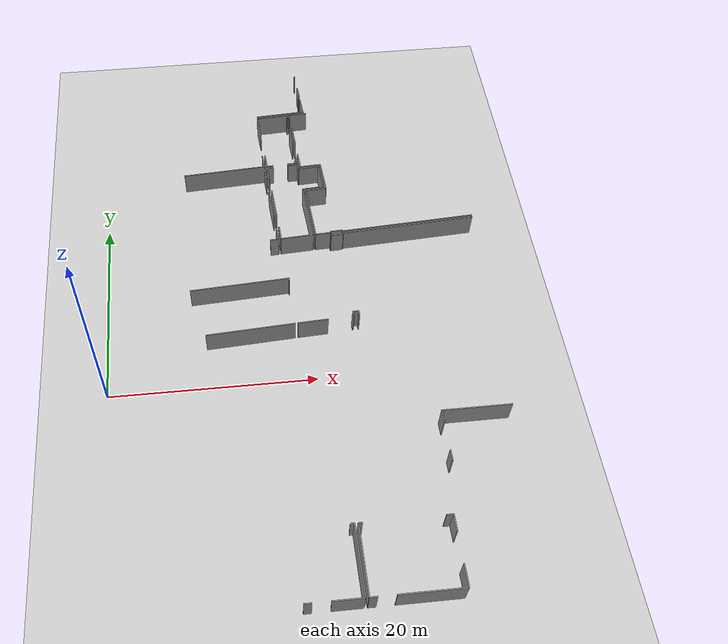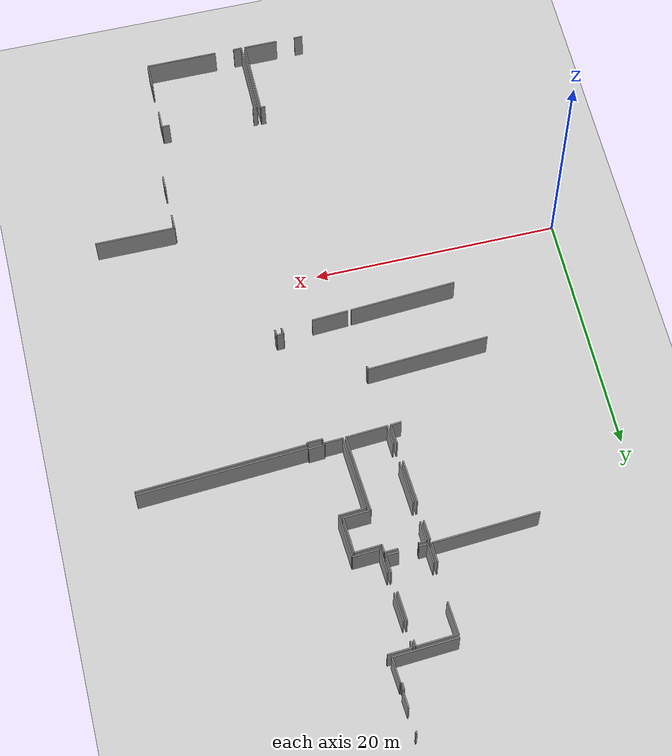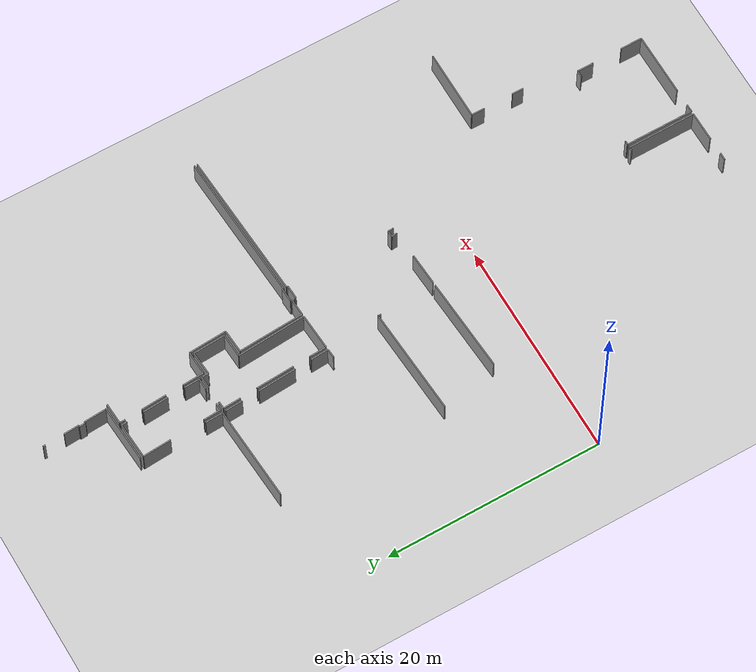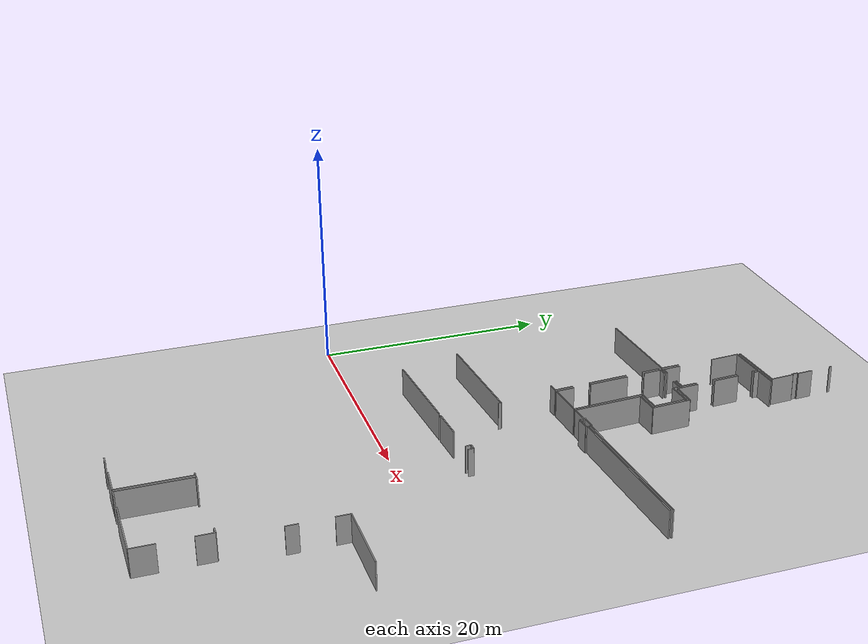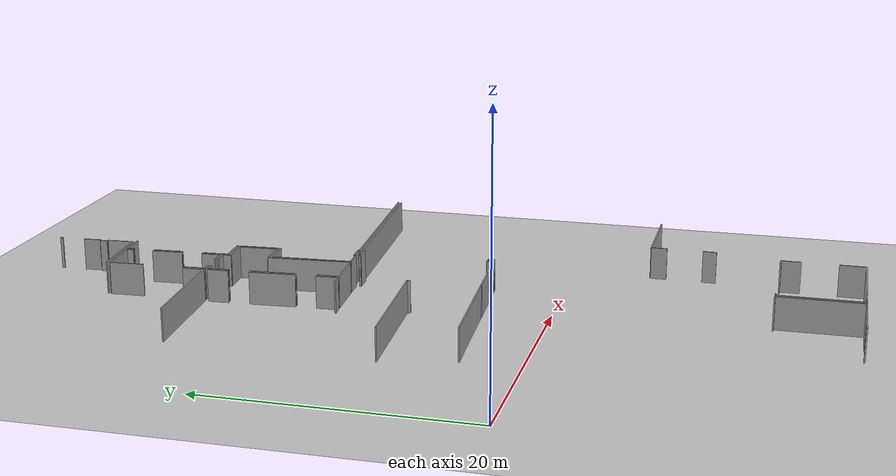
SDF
<sdf version="1.6">
 <world name="default">
  <model name="ground_plane">
   <static>1</static>
   <link name="link">
    <collision name="collision">
     <geometry><plane><normal>0 0 1</normal><size>100 100</size></plane></geometry>
     <surface><friction><ode><mu>100</mu><mu2>50</mu2></ode></friction></surface>
    </collision>
    <visual name="visual">
     <cast_shadows>0</cast_shadows>
     <geometry><plane><normal>0 0 1</normal><size>100 100</size></plane></geometry>
     <material>
      <script><uri>file://media/materials/scripts/gazebo.material</uri><name>Gazebo/Grey</name></script>
     </material>
    </visual>
   </link>
  </model>
  <model name="50025631">
   <static>1</static>
   <link name="Wall_0">
    <collision name="Wall_0_Collision">
     <geometry><box><size>8.67211934119 0.1 2.5</size></box></geometry>
     <pose>4.3360596706 0 1.25 0 0 0</pose>
    </collision>
    <visual name="Wall_0_Visual">
     <pose>4.3360596706 0 1.25 0 0 0</pose>
     <geometry><box><size>8.67211934119 0.1 2.5</size></box></geometry>
     <material>
      <script><uri>file://media/materials/scripts/gazebo.material</uri><name>Gazebo/Grey</name></script>
      <ambient>1 1 1 1</ambient>
     </material>
    </visual>
    <pose>72.8480437916 -22.7678776679 0 0 0 -3.08005815963</pose>
   </link>
   <link name="Wall_21">
    <collision name="Wall_21_Collision">
     <geometry><box><size>1.62895105357 0.1 2.5</size></box></geometry>
     <pose>0.814475526787 0 1.25 0 0 0</pose>
    </collision>
    <visual name="Wall_21_Visual">
     <pose>0.814475526787 0 1.25 0 0 0</pose>
     <geometry><box><size>1.62895105357 0.1 2.5</size></box></geometry>
     <material>
      <script><uri>file://media/materials/scripts/gazebo.material</uri><name>Gazebo/Grey</name></script>
      <ambient>1 1 1 1</ambient>
     </material>
    </visual>
    <pose>72.7812386885 -21.1402970668 0 0 0 -1.52977370438</pose>
   </link>
   <link name="Wall_22">
    <collision name="Wall_22_Collision">
     <geometry><box><size>5.25442817169 0.1 2.5</size></box></geometry>
     <pose>2.62721408584 0 1.25 0 0 0</pose>
    </collision>
    <visual name="Wall_22_Visual">
     <pose>2.62721408584 0 1.25 0 0 0</pose>
     <geometry><box><size>5.25442817169 0.1 2.5</size></box></geometry>
     <material>
      <script><uri>file://media/materials/scripts/gazebo.material</uri><name>Gazebo/Grey</name></script>
      <ambient>1 1 1 1</ambient>
     </material>
    </visual>
    <pose>77.9144361256 -14.6887783938 0 0 0 -3.07957792296</pose>
   </link>
   <link name="Wall_26">
    <collision name="Wall_26_Collision">
     <geometry><box><size>0.21997436446 0.1 2.5</size></box></geometry>
     <pose>0.10998718223 0 1.25 0 0 0</pose>
    </collision>
    <visual name="Wall_26_Visual">
     <pose>0.10998718223 0 1.25 0 0 0</pose>
     <geometry><box><size>0.21997436446 0.1 2.5</size></box></geometry>
     <material>
      <script><uri>file://media/materials/scripts/gazebo.material</uri><name>Gazebo/Grey</name></script>
      <ambient>1 1 1 1</ambient>
     </material>
    </visual>
    <pose>77.5605976898 -8.64799679945 0 0 0 -1.57195106069</pose>
   </link>
   <link name="Wall_27">
    <collision name="Wall_27_Collision">
     <geometry><box><size>1.40551481856 0.1 2.5</size></box></geometry>
     <pose>0.702757409282 0 1.25 0 0 0</pose>
    </collision>
    <visual name="Wall_27_Visual">
     <pose>0.702757409282 0 1.25 0 0 0</pose>
     <geometry><box><size>1.40551481856 0.1 2.5</size></box></geometry>
     <material>
      <script><uri>file://media/materials/scripts/gazebo.material</uri><name>Gazebo/Grey</name></script>
      <ambient>1 1 1 1</ambient>
     </material>
    </visual>
    <pose>77.6614403739 -10.6485937272 0 0 0 -1.5084057001</pose>
   </link>
   <link name="Wall_28">
    <collision name="Wall_28_Collision">
     <geometry><box><size>0.115575368476 0.1 2.5</size></box></geometry>
     <pose>0.0577876842379 0 1.25 0 0 0</pose>
    </collision>
    <visual name="Wall_28_Visual">
     <pose>0.0577876842379 0 1.25 0 0 0</pose>
     <geometry><box><size>0.115575368476 0.1 2.5</size></box></geometry>
     <material>
      <script><uri>file://media/materials/scripts/gazebo.material</uri><name>Gazebo/Grey</name></script>
      <ambient>1 1 1 1</ambient>
     </material>
    </visual>
    <pose>77.7490744445 -12.0513738863 0 0 0 3.14159265359</pose>
   </link>
   <link name="Wall_29">
    <collision name="Wall_29_Collision">
     <geometry><box><size>0.560009279978 0.1 2.5</size></box></geometry>
     <pose>0.280004639989 0 1.25 0 0 0</pose>
    </collision>
    <visual name="Wall_29_Visual">
     <pose>0.280004639989 0 1.25 0 0 0</pose>
     <geometry><box><size>0.560009279978 0.1 2.5</size></box></geometry>
     <material>
      <script><uri>file://media/materials/scripts/gazebo.material</uri><name>Gazebo/Grey</name></script>
      <ambient>1 1 1 1</ambient>
     </material>
    </visual>
    <pose>77.633499076 -12.0513738863 0 0 0 -1.53200508303</pose>
   </link>
   <link name="Wall_30">
    <collision name="Wall_30_Collision">
     <geometry><box><size>0.130121557384 0.1 2.5</size></box></geometry>
     <pose>0.0650607786918 0 1.25 0 0 0</pose>
    </collision>
    <visual name="Wall_30_Visual">
     <pose>0.0650607786918 0 1.25 0 0 0</pose>
     <geometry><box><size>0.130121557384 0.1 2.5</size></box></geometry>
     <material>
      <script><uri>file://media/materials/scripts/gazebo.material</uri><name>Gazebo/Grey</name></script>
      <ambient>1 1 1 1</ambient>
     </material>
    </visual>
    <pose>77.6552170848 -12.6109618792 0 0 0 0.0546863776495</pose>
   </link>
   <link name="Wall_31">
    <collision name="Wall_31_Collision">
     <geometry><box><size>2.08893386951 0.1 2.5</size></box></geometry>
     <pose>1.04446693476 0 1.25 0 0 0</pose>
    </collision>
    <visual name="Wall_31_Visual">
     <pose>1.04446693476 0 1.25 0 0 0</pose>
     <geometry><box><size>2.08893386951 0.1 2.5</size></box></geometry>
     <material>
      <script><uri>file://media/materials/scripts/gazebo.material</uri><name>Gazebo/Grey</name></script>
      <ambient>1 1 1 1</ambient>
     </material>
    </visual>
    <pose>77.7851441199 -12.6038495488 0 0 0 -1.5088629647</pose>
   </link>
   <link name="Wall_32">
    <collision name="Wall_32_Collision">
     <geometry><box><size>1.03434341353 0.1 2.5</size></box></geometry>
     <pose>0.517171706767 0 1.25 0 0 0</pose>
    </collision>
    <visual name="Wall_32_Visual">
     <pose>0.517171706767 0 1.25 0 0 0</pose>
     <geometry><box><size>1.03434341353 0.1 2.5</size></box></geometry>
     <material>
      <script><uri>file://media/materials/scripts/gazebo.material</uri><name>Gazebo/Grey</name></script>
      <ambient>1 1 1 1</ambient>
     </material>
    </visual>
    <pose>76.4459939164 -22.5830840843 0 0 0 -3.09442422389</pose>
   </link>
   <link name="Wall_33">
    <collision name="Wall_33_Collision">
     <geometry><box><size>0.673342806366 0.1 2.5</size></box></geometry>
     <pose>0.336671403183 0 1.25 0 0 0</pose>
    </collision>
    <visual name="Wall_33_Visual">
     <pose>0.336671403183 0 1.25 0 0 0</pose>
     <geometry><box><size>0.673342806366 0.1 2.5</size></box></geometry>
     <material>
      <script><uri>file://media/materials/scripts/gazebo.material</uri><name>Gazebo/Grey</name></script>
      <ambient>1 1 1 1</ambient>
     </material>
    </visual>
    <pose>73.833863583 -22.7213935087 0 0 0 -3.08440964425</pose>
   </link>
   <link name="Wall_34">
    <collision name="Wall_34_Collision">
     <geometry><box><size>1.63607680968 0.1 2.5</size></box></geometry>
     <pose>0.81803840484 0 1.25 0 0 0</pose>
    </collision>
    <visual name="Wall_34_Visual">
     <pose>0.81803840484 0 1.25 0 0 0</pose>
     <geometry><box><size>1.63607680968 0.1 2.5</size></box></geometry>
     <material>
      <script><uri>file://media/materials/scripts/gazebo.material</uri><name>Gazebo/Grey</name></script>
      <ambient>1 1 1 1</ambient>
     </material>
    </visual>
    <pose>73.1616213573 -22.7598762963 0 0 0 1.63542807964</pose>
   </link>
   <link name="Wall_35">
    <collision name="Wall_35_Collision">
     <geometry><box><size>2.6347653498 0.1 2.5</size></box></geometry>
     <pose>1.3173826749 0 1.25 0 0 0</pose>
    </collision>
    <visual name="Wall_35_Visual">
     <pose>1.3173826749 0 1.25 0 0 0</pose>
     <geometry><box><size>2.6347653498 0.1 2.5</size></box></geometry>
     <material>
      <script><uri>file://media/materials/scripts/gazebo.material</uri><name>Gazebo/Grey</name></script>
      <ambient>1 1 1 1</ambient>
     </material>
    </visual>
    <pose>72.8607443816 -17.9190464397 0 0 0 1.63683542233</pose>
   </link>
   <link name="Wall_36">
    <collision name="Wall_36_Collision">
     <geometry><box><size>3.32965445629 0.1 2.5</size></box></geometry>
     <pose>1.66482722815 0 1.25 0 0 0</pose>
    </collision>
    <visual name="Wall_36_Visual">
     <pose>1.66482722815 0 1.25 0 0 0</pose>
     <geometry><box><size>3.32965445629 0.1 2.5</size></box></geometry>
     <material>
      <script><uri>file://media/materials/scripts/gazebo.material</uri><name>Gazebo/Grey</name></script>
      <ambient>1 1 1 1</ambient>
     </material>
    </visual>
    <pose>72.6868733053 -15.2900243216 0 0 0 0.0602274277199</pose>
   </link>
   <link name="Wall_37">
    <collision name="Wall_37_Collision">
     <geometry><box><size>0.527117831154 0.1 2.5</size></box></geometry>
     <pose>0.263558915577 0 1.25 0 0 0</pose>
    </collision>
    <visual name="Wall_37_Visual">
     <pose>0.263558915577 0 1.25 0 0 0</pose>
     <geometry><box><size>0.527117831154 0.1 2.5</size></box></geometry>
     <material>
      <script><uri>file://media/materials/scripts/gazebo.material</uri><name>Gazebo/Grey</name></script>
      <ambient>1 1 1 1</ambient>
     </material>
    </visual>
    <pose>76.0104906873 -15.0896090123 0 0 0 -1.50738555801</pose>
   </link>
   <link name="Wall_38">
    <collision name="Wall_38_Collision">
     <geometry><box><size>2.376935261 0.1 2.5</size></box></geometry>
     <pose>1.1884676305 0 1.25 0 0 0</pose>
    </collision>
    <visual name="Wall_38_Visual">
     <pose>1.1884676305 0 1.25 0 0 0</pose>
     <geometry><box><size>2.376935261 0.1 2.5</size></box></geometry>
     <material>
      <script><uri>file://media/materials/scripts/gazebo.material</uri><name>Gazebo/Grey</name></script>
      <ambient>1 1 1 1</ambient>
     </material>
    </visual>
    <pose>76.1386396398 -17.1802531228 0 0 0 -1.50609771833</pose>
   </link>
   <link name="Wall_39">
    <collision name="Wall_39_Collision">
     <geometry><box><size>1.44071305552 0.1 2.5</size></box></geometry>
     <pose>0.720356527759 0 1.25 0 0 0</pose>
    </collision>
    <visual name="Wall_39_Visual">
     <pose>0.720356527759 0 1.25 0 0 0</pose>
     <geometry><box><size>1.44071305552 0.1 2.5</size></box></geometry>
     <material>
      <script><uri>file://media/materials/scripts/gazebo.material</uri><name>Gazebo/Grey</name></script>
      <ambient>1 1 1 1</ambient>
     </material>
    </visual>
    <pose>76.3779187543 -21.1439802379 0 0 0 -1.52352770606</pose>
   </link>
   <link name="Wall_40">
    <collision name="Wall_40_Collision">
     <geometry><box><size>3.37497856881 0.1 2.5</size></box></geometry>
     <pose>1.6874892844 0 1.25 0 0 0</pose>
    </collision>
    <visual name="Wall_40_Visual">
     <pose>1.6874892844 0 1.25 0 0 0</pose>
     <geometry><box><size>3.37497856881 0.1 2.5</size></box></geometry>
     <material>
      <script><uri>file://media/materials/scripts/gazebo.material</uri><name>Gazebo/Grey</name></script>
      <ambient>1 1 1 1</ambient>
     </material>
    </visual>
    <pose>77.119633207 -32.8098531177 0 0 0 -3.07938510921</pose>
   </link>
   <link name="Wall_41">
    <collision name="Wall_41_Collision">
     <geometry><box><size>1.61418796791 0.1 2.5</size></box></geometry>
     <pose>0.807093983957 0 1.25 0 0 0</pose>
    </collision>
    <visual name="Wall_41_Visual">
     <pose>0.807093983957 0 1.25 0 0 0</pose>
     <geometry><box><size>1.61418796791 0.1 2.5</size></box></geometry>
     <material>
      <script><uri>file://media/materials/scripts/gazebo.material</uri><name>Gazebo/Grey</name></script>
      <ambient>1 1 1 1</ambient>
     </material>
    </visual>
    <pose>73.7511827424 -33.0196668635 0 0 0 1.61865263059</pose>
   </link>
   <link name="Wall_42">
    <collision name="Wall_42_Collision">
     <geometry><box><size>3.55531632255 0.1 2.5</size></box></geometry>
     <pose>1.77765816127 0 1.25 0 0 0</pose>
    </collision>
    <visual name="Wall_42_Visual">
     <pose>1.77765816127 0 1.25 0 0 0</pose>
     <geometry><box><size>3.55531632255 0.1 2.5</size></box></geometry>
     <material>
      <script><uri>file://media/materials/scripts/gazebo.material</uri><name>Gazebo/Grey</name></script>
      <ambient>1 1 1 1</ambient>
     </material>
    </visual>
    <pose>73.5719774184 -29.8205152629 0 0 0 1.62955844266</pose>
   </link>
   <link name="Wall_43">
    <collision name="Wall_43_Collision">
     <geometry><box><size>1.63093683571 0.1 2.5</size></box></geometry>
     <pose>0.815468417854 0 1.25 0 0 0</pose>
    </collision>
    <visual name="Wall_43_Visual">
     <pose>0.815468417854 0 1.25 0 0 0</pose>
     <geometry><box><size>1.63093683571 0.1 2.5</size></box></geometry>
     <material>
      <script><uri>file://media/materials/scripts/gazebo.material</uri><name>Gazebo/Grey</name></script>
      <ambient>1 1 1 1</ambient>
     </material>
    </visual>
    <pose>73.2547166816 -24.6512481505 0 0 0 1.627206271</pose>
   </link>
   <link name="Wall_44">
    <collision name="Wall_44_Collision">
     <geometry><box><size>0.669483286007 0.1 2.5</size></box></geometry>
     <pose>0.334741643003 0 1.25 0 0 0</pose>
    </collision>
    <visual name="Wall_44_Visual">
     <pose>0.334741643003 0 1.25 0 0 0</pose>
     <geometry><box><size>0.669483286007 0.1 2.5</size></box></geometry>
     <material>
      <script><uri>file://media/materials/scripts/gazebo.material</uri><name>Gazebo/Grey</name></script>
      <ambient>1 1 1 1</ambient>
     </material>
    </visual>
    <pose>73.1627644104 -23.022905514 0 0 0 0.0624543108539</pose>
   </link>
   <link name="Wall_45">
    <collision name="Wall_45_Collision">
     <geometry><box><size>1.07560645369 0.1 2.5</size></box></geometry>
     <pose>0.537803226847 0 1.25 0 0 0</pose>
    </collision>
    <visual name="Wall_45_Visual">
     <pose>0.537803226847 0 1.25 0 0 0</pose>
     <geometry><box><size>1.07560645369 0.1 2.5</size></box></geometry>
     <material>
      <script><uri>file://media/materials/scripts/gazebo.material</uri><name>Gazebo/Grey</name></script>
      <ambient>1 1 1 1</ambient>
     </material>
    </visual>
    <pose>75.4200402609 -22.8859931544 0 0 0 0.0405119751002</pose>
   </link>
   <link name="Wall_46">
    <collision name="Wall_46_Collision">
     <geometry><box><size>0.639998303441 0.1 2.5</size></box></geometry>
     <pose>0.319999151721 0 1.25 0 0 0</pose>
    </collision>
    <visual name="Wall_46_Visual">
     <pose>0.319999151721 0 1.25 0 0 0</pose>
     <geometry><box><size>0.639998303441 0.1 2.5</size></box></geometry>
     <material>
      <script><uri>file://media/materials/scripts/gazebo.material</uri><name>Gazebo/Grey</name></script>
      <ambient>1 1 1 1</ambient>
     </material>
    </visual>
    <pose>76.4947641818 -22.8424301309 0 0 0 -1.51400990011</pose>
   </link>
   <link name="Wall_47">
    <collision name="Wall_47_Collision">
     <geometry><box><size>2.17614023963 0.1 2.5</size></box></geometry>
     <pose>1.08807011982 0 1.25 0 0 0</pose>
    </collision>
    <visual name="Wall_47_Visual">
     <pose>1.08807011982 0 1.25 0 0 0</pose>
     <geometry><box><size>2.17614023963 0.1 2.5</size></box></geometry>
     <material>
      <script><uri>file://media/materials/scripts/gazebo.material</uri><name>Gazebo/Grey</name></script>
      <ambient>1 1 1 1</ambient>
     </material>
    </visual>
    <pose>76.531087869 -23.4813968109 0 0 0 0.0667583937188</pose>
   </link>
   <link name="Wall_48">
    <collision name="Wall_48_Collision">
     <geometry><box><size>2.96457346183 0.1 2.5</size></box></geometry>
     <pose>1.48228673091 0 1.25 0 0 0</pose>
    </collision>
    <visual name="Wall_48_Visual">
     <pose>1.48228673091 0 1.25 0 0 0</pose>
     <geometry><box><size>2.96457346183 0.1 2.5</size></box></geometry>
     <material>
      <script><uri>file://media/materials/scripts/gazebo.material</uri><name>Gazebo/Grey</name></script>
      <ambient>1 1 1 1</ambient>
     </material>
    </visual>
    <pose>78.7023807256 -23.3362290678 0 0 0 -1.51297132142</pose>
   </link>
   <link name="Wall_49">
    <collision name="Wall_49_Collision">
     <geometry><box><size>2.19473962889 0.1 2.5</size></box></geometry>
     <pose>1.09736981444 0 1.25 0 0 0</pose>
    </collision>
    <visual name="Wall_49_Visual">
     <pose>1.09736981444 0 1.25 0 0 0</pose>
     <geometry><box><size>2.19473962889 0.1 2.5</size></box></geometry>
     <material>
      <script><uri>file://media/materials/scripts/gazebo.material</uri><name>Gazebo/Grey</name></script>
      <ambient>1 1 1 1</ambient>
     </material>
    </visual>
    <pose>78.8737116839 -26.2958475421 0 0 0 -3.08403977445</pose>
   </link>
   <link name="Wall_50">
    <collision name="Wall_50_Collision">
     <geometry><box><size>6.40269416294 0.1 2.5</size></box></geometry>
     <pose>3.20134708147 0 1.25 0 0 0</pose>
    </collision>
    <visual name="Wall_50_Visual">
     <pose>3.20134708147 0 1.25 0 0 0</pose>
     <geometry><box><size>6.40269416294 0.1 2.5</size></box></geometry>
     <material>
      <script><uri>file://media/materials/scripts/gazebo.material</uri><name>Gazebo/Grey</name></script>
      <ambient>1 1 1 1</ambient>
     </material>
    </visual>
    <pose>76.682605907 -26.4220914061 0 0 0 -1.50248643207</pose>
   </link>
   <link name="Wall_51">
    <collision name="Wall_51_Collision">
     <geometry><box><size>0.85330574929 0.1 2.5</size></box></geometry>
     <pose>0.426652874645 0 1.25 0 0 0</pose>
    </collision>
    <visual name="Wall_51_Visual">
     <pose>0.426652874645 0 1.25 0 0 0</pose>
     <geometry><box><size>0.85330574929 0.1 2.5</size></box></geometry>
     <material>
      <script><uri>file://media/materials/scripts/gazebo.material</uri><name>Gazebo/Grey</name></script>
      <ambient>1 1 1 1</ambient>
     </material>
    </visual>
    <pose>73.4856134067 -33.0384637366 0 0 0 -3.06710386338</pose>
   </link>
   <link name="Wall_58">
    <collision name="Wall_58_Collision">
     <geometry><box><size>1.60762596552 0.1 2.5</size></box></geometry>
     <pose>0.803812982758 0 1.25 0 0 0</pose>
    </collision>
    <visual name="Wall_58_Visual">
     <pose>0.803812982758 0 1.25 0 0 0</pose>
     <geometry><box><size>1.60762596552 0.1 2.5</size></box></geometry>
     <material>
      <script><uri>file://media/materials/scripts/gazebo.material</uri><name>Gazebo/Grey</name></script>
      <ambient>1 1 1 1</ambient>
     </material>
    </visual>
    <pose>72.8813193373 -23.0709137439 0 0 0 -1.51198483409</pose>
   </link>
   <link name="Wall_59">
    <collision name="Wall_59_Collision">
     <geometry><box><size>3.55594650247 0.1 2.5</size></box></geometry>
     <pose>1.77797325124 0 1.25 0 0 0</pose>
    </collision>
    <visual name="Wall_59_Visual">
     <pose>1.77797325124 0 1.25 0 0 0</pose>
     <geometry><box><size>3.55594650247 0.1 2.5</size></box></geometry>
     <material>
      <script><uri>file://media/materials/scripts/gazebo.material</uri><name>Gazebo/Grey</name></script>
      <ambient>1 1 1 1</ambient>
     </material>
    </visual>
    <pose>73.0708121392 -26.2831469522 0 0 0 -1.50682019105</pose>
   </link>
   <link name="Wall_60">
    <collision name="Wall_60_Collision">
     <geometry><box><size>1.64986230888 0.1 2.5</size></box></geometry>
     <pose>0.824931154438 0 1.25 0 0 0</pose>
    </collision>
    <visual name="Wall_60_Visual">
     <pose>0.824931154438 0 1.25 0 0 0</pose>
     <geometry><box><size>1.64986230888 0.1 2.5</size></box></geometry>
     <material>
      <script><uri>file://media/materials/scripts/gazebo.material</uri><name>Gazebo/Grey</name></script>
      <ambient>1 1 1 1</ambient>
     </material>
    </visual>
    <pose>73.3865488052 -31.3915782388 0 0 0 -1.51071602549</pose>
   </link>
   <link name="Wall_62">
    <collision name="Wall_62_Collision">
     <geometry><box><size>1.95593044111 0.1 2.5</size></box></geometry>
     <pose>0.977965220554 0 1.25 0 0 0</pose>
    </collision>
    <visual name="Wall_62_Visual">
     <pose>0.977965220554 0 1.25 0 0 0</pose>
     <geometry><box><size>1.95593044111 0.1 2.5</size></box></geometry>
     <material>
      <script><uri>file://media/materials/scripts/gazebo.material</uri><name>Gazebo/Grey</name></script>
      <ambient>1 1 1 1</ambient>
     </material>
    </visual>
    <pose>78.219504296 -14.9476164168 0 0 0 -3.08539538426</pose>
   </link>
   <link name="Wall_63">
    <collision name="Wall_63_Collision">
     <geometry><box><size>0.516196475408 0.1 2.5</size></box></geometry>
     <pose>0.258098237704 0 1.25 0 0 0</pose>
    </collision>
    <visual name="Wall_63_Visual">
     <pose>0.258098237704 0 1.25 0 0 0</pose>
     <geometry><box><size>0.516196475408 0.1 2.5</size></box></geometry>
     <material>
      <script><uri>file://media/materials/scripts/gazebo.material</uri><name>Gazebo/Grey</name></script>
      <ambient>1 1 1 1</ambient>
     </material>
    </visual>
    <pose>76.2666615864 -15.0574765198 0 0 0 -1.52452396146</pose>
   </link>
   <link name="Wall_64">
    <collision name="Wall_64_Collision">
     <geometry><box><size>2.34327544113 0.1 2.5</size></box></geometry>
     <pose>1.17163772056 0 1.25 0 0 0</pose>
    </collision>
    <visual name="Wall_64_Visual">
     <pose>1.17163772056 0 1.25 0 0 0</pose>
     <geometry><box><size>2.34327544113 0.1 2.5</size></box></geometry>
     <material>
      <script><uri>file://media/materials/scripts/gazebo.material</uri><name>Gazebo/Grey</name></script>
      <ambient>1 1 1 1</ambient>
     </material>
    </visual>
    <pose>76.4003987985 -17.1855873705 0 0 0 -1.5056558785</pose>
   </link>
   <link name="Wall_65">
    <collision name="Wall_65_Collision">
     <geometry><box><size>2.01124066516 0.1 2.5</size></box></geometry>
     <pose>1.00562033258 0 1.25 0 0 0</pose>
    </collision>
    <visual name="Wall_65_Visual">
     <pose>1.00562033258 0 1.25 0 0 0</pose>
     <geometry><box><size>2.01124066516 0.1 2.5</size></box></geometry>
     <material>
      <script><uri>file://media/materials/scripts/gazebo.material</uri><name>Gazebo/Grey</name></script>
      <ambient>1 1 1 1</ambient>
     </material>
    </visual>
    <pose>76.6367567774 -21.1522356213 0 0 0 -1.51260414753</pose>
   </link>
   <link name="Wall_66">
    <collision name="Wall_66_Collision">
     <geometry><box><size>2.18472528806 0.1 2.5</size></box></geometry>
     <pose>1.09236264403 0 1.25 0 0 0</pose>
    </collision>
    <visual name="Wall_66_Visual">
     <pose>1.09236264403 0 1.25 0 0 0</pose>
     <geometry><box><size>2.18472528806 0.1 2.5</size></box></geometry>
     <material>
      <script><uri>file://media/materials/scripts/gazebo.material</uri><name>Gazebo/Grey</name></script>
      <ambient>1 1 1 1</ambient>
     </material>
    </visual>
    <pose>76.7537292107 -23.1600718853 0 0 0 0.050306762015</pose>
   </link>
   <link name="Wall_67">
    <collision name="Wall_67_Collision">
     <geometry><box><size>3.51530811358 0.1 2.5</size></box></geometry>
     <pose>1.75765405679 0 1.25 0 0 0</pose>
    </collision>
    <visual name="Wall_67_Visual">
     <pose>1.75765405679 0 1.25 0 0 0</pose>
     <geometry><box><size>3.51530811358 0.1 2.5</size></box></geometry>
     <material>
      <script><uri>file://media/materials/scripts/gazebo.material</uri><name>Gazebo/Grey</name></script>
      <ambient>1 1 1 1</ambient>
     </material>
    </visual>
    <pose>78.9356905628 -23.0502117823 0 0 0 -1.51049598581</pose>
   </link>
   <link name="Wall_68">
    <collision name="Wall_68_Collision">
     <geometry><box><size>2.16848968518 0.1 2.5</size></box></geometry>
     <pose>1.08424484259 0 1.25 0 0 0</pose>
    </collision>
    <visual name="Wall_68_Visual">
     <pose>1.08424484259 0 1.25 0 0 0</pose>
     <geometry><box><size>2.16848968518 0.1 2.5</size></box></geometry>
     <material>
      <script><uri>file://media/materials/scripts/gazebo.material</uri><name>Gazebo/Grey</name></script>
      <ambient>1 1 1 1</ambient>
     </material>
    </visual>
    <pose>79.1475364031 -26.5591307716 0 0 0 -3.07318950081</pose>
   </link>
   <link name="Wall_69">
    <collision name="Wall_69_Collision">
     <geometry><box><size>6.09461759717 0.1 2.5</size></box></geometry>
     <pose>3.04730879858 0 1.25 0 0 0</pose>
    </collision>
    <visual name="Wall_69_Visual">
     <pose>3.04730879858 0 1.25 0 0 0</pose>
     <geometry><box><size>6.09461759717 0.1 2.5</size></box></geometry>
     <material>
      <script><uri>file://media/materials/scripts/gazebo.material</uri><name>Gazebo/Grey</name></script>
      <ambient>1 1 1 1</ambient>
     </material>
    </visual>
    <pose>76.9841179123 -26.7073466563 0 0 0 -1.51130750185</pose>
   </link>
   <link name="Wall_70">
    <collision name="Wall_70_Collision">
     <geometry><box><size>1.53360708491 0.1 2.5</size></box></geometry>
     <pose>0.766803542457 0 1.25 0 0 0</pose>
    </collision>
    <visual name="Wall_70_Visual">
     <pose>0.766803542457 0 1.25 0 0 0</pose>
     <geometry><box><size>1.53360708491 0.1 2.5</size></box></geometry>
     <material>
      <script><uri>file://media/materials/scripts/gazebo.material</uri><name>Gazebo/Grey</name></script>
      <ambient>1 1 1 1</ambient>
     </material>
    </visual>
    <pose>77.3464657433 -32.7911832505 0 0 0 0.0465589332131</pose>
   </link>
   <link name="Wall_71">
    <collision name="Wall_71_Collision">
     <geometry><box><size>0.137293377277 0.1 2.5</size></box></geometry>
     <pose>0.0686466886387 0 1.25 0 0 0</pose>
    </collision>
    <visual name="Wall_71_Visual">
     <pose>0.0686466886387 0 1.25 0 0 0</pose>
     <geometry><box><size>0.137293377277 0.1 2.5</size></box></geometry>
     <material>
      <script><uri>file://media/materials/scripts/gazebo.material</uri><name>Gazebo/Grey</name></script>
      <ambient>1 1 1 1</ambient>
     </material>
    </visual>
    <pose>78.8784109022 -32.719805935 0 0 0 1.57079632679</pose>
   </link>
   <link name="Wall_72">
    <collision name="Wall_72_Collision">
     <geometry><box><size>1.27073317853 0.1 2.5</size></box></geometry>
     <pose>0.635366589263 0 1.25 0 0 0</pose>
    </collision>
    <visual name="Wall_72_Visual">
     <pose>0.635366589263 0 1.25 0 0 0</pose>
     <geometry><box><size>1.27073317853 0.1 2.5</size></box></geometry>
     <material>
      <script><uri>file://media/materials/scripts/gazebo.material</uri><name>Gazebo/Grey</name></script>
      <ambient>1 1 1 1</ambient>
     </material>
    </visual>
    <pose>78.8784109022 -32.5825125577 0 0 0 0.0605048114479</pose>
   </link>
   <link name="Wall_73">
    <collision name="Wall_73_Collision">
     <geometry><box><size>0.120782610352 0.1 2.5</size></box></geometry>
     <pose>0.0603913051761 0 1.25 0 0 0</pose>
    </collision>
    <visual name="Wall_73_Visual">
     <pose>0.0603913051761 0 1.25 0 0 0</pose>
     <geometry><box><size>0.120782610352 0.1 2.5</size></box></geometry>
     <material>
      <script><uri>file://media/materials/scripts/gazebo.material</uri><name>Gazebo/Grey</name></script>
      <ambient>1 1 1 1</ambient>
     </material>
    </visual>
    <pose>80.1468188197 -32.5056739886 0 0 0 -1.57079632679</pose>
   </link>
   <link name="Wall_74">
    <collision name="Wall_74_Collision">
     <geometry><box><size>13.754300209 0.1 2.5</size></box></geometry>
     <pose>6.8771501045 0 1.25 0 0 0</pose>
    </collision>
    <visual name="Wall_74_Visual">
     <pose>6.8771501045 0 1.25 0 0 0</pose>
     <geometry><box><size>13.754300209 0.1 2.5</size></box></geometry>
     <material>
      <script><uri>file://media/materials/scripts/gazebo.material</uri><name>Gazebo/Grey</name></script>
      <ambient>1 1 1 1</ambient>
     </material>
    </visual>
    <pose>80.1468188197 -32.6264565989 0 0 0 0.0610185653065</pose>
   </link>
   <link name="Wall_146">
    <collision name="Wall_146_Collision">
     <geometry><box><size>0.501662595531 0.1 2.5</size></box></geometry>
     <pose>0.250831297766 0 1.25 0 0 0</pose>
    </collision>
    <visual name="Wall_146_Visual">
     <pose>0.250831297766 0 1.25 0 0 0</pose>
     <geometry><box><size>0.501662595531 0.1 2.5</size></box></geometry>
     <material>
      <script><uri>file://media/materials/scripts/gazebo.material</uri><name>Gazebo/Grey</name></script>
      <ambient>1 1 1 1</ambient>
     </material>
    </visual>
    <pose>80.4363922704 -43.2736151594 0 0 0 1.62069150899</pose>
   </link>
   <link name="Wall_147">
    <collision name="Wall_147_Collision">
     <geometry><box><size>0.560584027783 0.1 2.5</size></box></geometry>
     <pose>0.280292013892 0 1.25 0 0 0</pose>
    </collision>
    <visual name="Wall_147_Visual">
     <pose>0.280292013892 0 1.25 0 0 0</pose>
     <geometry><box><size>0.560584027783 0.1 2.5</size></box></geometry>
     <material>
      <script><uri>file://media/materials/scripts/gazebo.material</uri><name>Gazebo/Grey</name></script>
      <ambient>1 1 1 1</ambient>
     </material>
    </visual>
    <pose>80.4113721082 -42.7725768862 0 0 0 -3.0819720669</pose>
   </link>
   <link name="Wall_148">
    <collision name="Wall_148_Collision">
     <geometry><box><size>0.51113148285 0.1 2.5</size></box></geometry>
     <pose>0.255565741425 0 1.25 0 0 0</pose>
    </collision>
    <visual name="Wall_148_Visual">
     <pose>0.255565741425 0 1.25 0 0 0</pose>
     <geometry><box><size>0.51113148285 0.1 2.5</size></box></geometry>
     <material>
      <script><uri>file://media/materials/scripts/gazebo.material</uri><name>Gazebo/Grey</name></script>
      <ambient>1 1 1 1</ambient>
     </material>
    </visual>
    <pose>79.8517841154 -42.8059794377 0 0 0 -1.48895510862</pose>
   </link>
   <link name="Wall_149">
    <collision name="Wall_149_Collision">
     <geometry><box><size>2.96784412795 0.1 2.5</size></box></geometry>
     <pose>1.48392206397 0 1.25 0 0 0</pose>
    </collision>
    <visual name="Wall_149_Visual">
     <pose>1.48392206397 0 1.25 0 0 0</pose>
     <geometry><box><size>2.96784412795 0.1 2.5</size></box></geometry>
     <material>
      <script><uri>file://media/materials/scripts/gazebo.material</uri><name>Gazebo/Grey</name></script>
      <ambient>1 1 1 1</ambient>
     </material>
    </visual>
    <pose>77.377201171 -43.445835159 0 0 0 -3.08473159613</pose>
   </link>
   <link name="Wall_150">
    <collision name="Wall_150_Collision">
     <geometry><box><size>0.265291520622 0.1 2.5</size></box></geometry>
     <pose>0.132645760311 0 1.25 0 0 0</pose>
    </collision>
    <visual name="Wall_150_Visual">
     <pose>0.132645760311 0 1.25 0 0 0</pose>
     <geometry><box><size>0.265291520622 0.1 2.5</size></box></geometry>
     <material>
      <script><uri>file://media/materials/scripts/gazebo.material</uri><name>Gazebo/Grey</name></script>
      <ambient>1 1 1 1</ambient>
     </material>
    </visual>
    <pose>74.082541134 -38.4202117188 0 0 0 1.61245883614</pose>
   </link>
   <link name="Wall_151">
    <collision name="Wall_151_Collision">
     <geometry><box><size>9.87902022223 0.1 2.5</size></box></geometry>
     <pose>4.93951011111 0 1.25 0 0 0</pose>
    </collision>
    <visual name="Wall_151_Visual">
     <pose>4.93951011111 0 1.25 0 0 0</pose>
     <geometry><box><size>9.87902022223 0.1 2.5</size></box></geometry>
     <material>
      <script><uri>file://media/materials/scripts/gazebo.material</uri><name>Gazebo/Grey</name></script>
      <ambient>1 1 1 1</ambient>
     </material>
    </visual>
    <pose>74.0714916208 -38.1551504067 0 0 0 -3.08074565237</pose>
   </link>
   <link name="Wall_157">
    <collision name="Wall_157_Collision">
     <geometry><box><size>0.116308907247 0.1 2.5</size></box></geometry>
     <pose>0.0581544536233 0 1.25 0 0 0</pose>
    </collision>
    <visual name="Wall_157_Visual">
     <pose>0.0581544536233 0 1.25 0 0 0</pose>
     <geometry><box><size>0.116308907247 0.1 2.5</size></box></geometry>
     <material>
      <script><uri>file://media/materials/scripts/gazebo.material</uri><name>Gazebo/Grey</name></script>
      <ambient>1 1 1 1</ambient>
     </material>
    </visual>
    <pose>78.9201958431 -32.9796600052 0 0 0 -1.5085137473</pose>
   </link>
   <link name="Wall_158">
    <collision name="Wall_158_Collision">
     <geometry><box><size>1.22830903822 0.1 2.5</size></box></geometry>
     <pose>0.614154519111 0 1.25 0 0 0</pose>
    </collision>
    <visual name="Wall_158_Visual">
     <pose>0.614154519111 0 1.25 0 0 0</pose>
     <geometry><box><size>1.22830903822 0.1 2.5</size></box></geometry>
     <material>
      <script><uri>file://media/materials/scripts/gazebo.material</uri><name>Gazebo/Grey</name></script>
      <ambient>1 1 1 1</ambient>
     </material>
    </visual>
    <pose>78.9274351794 -33.0957433973 0 0 0 0.0413713920809</pose>
   </link>
   <link name="Wall_159">
    <collision name="Wall_159_Collision">
     <geometry><box><size>0.145348139339 0.1 2.5</size></box></geometry>
     <pose>0.0726740696697 0 1.25 0 0 0</pose>
    </collision>
    <visual name="Wall_159_Visual">
     <pose>0.0726740696697 0 1.25 0 0 0</pose>
     <geometry><box><size>0.145348139339 0.1 2.5</size></box></geometry>
     <material>
      <script><uri>file://media/materials/scripts/gazebo.material</uri><name>Gazebo/Grey</name></script>
      <ambient>1 1 1 1</ambient>
     </material>
    </visual>
    <pose>80.1546931855 -33.0449410375 0 0 0 1.52096883826</pose>
   </link>
   <link name="Wall_160">
    <collision name="Wall_160_Collision">
     <geometry><box><size>13.7283295118 0.1 2.5</size></box></geometry>
     <pose>6.86416475589 0 1.25 0 0 0</pose>
    </collision>
    <visual name="Wall_160_Visual">
     <pose>6.86416475589 0 1.25 0 0 0</pose>
     <geometry><box><size>13.7283295118 0.1 2.5</size></box></geometry>
     <material>
      <script><uri>file://media/materials/scripts/gazebo.material</uri><name>Gazebo/Grey</name></script>
      <ambient>1 1 1 1</ambient>
     </material>
    </visual>
    <pose>80.1619325218 -32.8997732945 0 0 0 0.0616068515883</pose>
   </link>
   <link name="Wall_168">
    <collision name="Wall_168_Collision">
     <geometry><box><size>8.66947832424 0.1 2.5</size></box></geometry>
     <pose>4.33473916212 0 1.25 0 0 0</pose>
    </collision>
    <visual name="Wall_168_Visual">
     <pose>4.33473916212 0 1.25 0 0 0</pose>
     <geometry><box><size>8.66947832424 0.1 2.5</size></box></geometry>
     <material>
      <script><uri>file://media/materials/scripts/gazebo.material</uri><name>Gazebo/Grey</name></script>
      <ambient>1 1 1 1</ambient>
     </material>
    </visual>
    <pose>74.150743302 -43.6282156306 0 0 0 -3.07952566731</pose>
   </link>
   <link name="Wall_279">
    <collision name="Wall_279_Collision">
     <geometry><box><size>1.0577051304 0.1 2.5</size></box></geometry>
     <pose>0.528852565202 0 1.25 0 0 0</pose>
    </collision>
    <visual name="Wall_279_Visual">
     <pose>0.528852565202 0 1.25 0 0 0</pose>
     <geometry><box><size>1.0577051304 0.1 2.5</size></box></geometry>
     <material>
      <script><uri>file://media/materials/scripts/gazebo.material</uri><name>Gazebo/Grey</name></script>
      <ambient>1 1 1 1</ambient>
     </material>
    </visual>
    <pose>86.3759501629 -59.417589047 0 0 0 1.57079632679</pose>
   </link>
   <link name="Wall_280">
    <collision name="Wall_280_Collision">
     <geometry><box><size>1.22992513002 0.1 2.5</size></box></geometry>
     <pose>0.614962565011 0 1.25 0 0 0</pose>
    </collision>
    <visual name="Wall_280_Visual">
     <pose>0.614962565011 0 1.25 0 0 0</pose>
     <geometry><box><size>1.22992513002 0.1 2.5</size></box></geometry>
     <material>
      <script><uri>file://media/materials/scripts/gazebo.material</uri><name>Gazebo/Grey</name></script>
      <ambient>1 1 1 1</ambient>
     </material>
    </visual>
    <pose>86.3759501629 -55.6164294831 0 0 0 1.57079632679</pose>
   </link>
   <link name="Wall_281">
    <collision name="Wall_281_Collision">
     <geometry><box><size>6.53508855486 0.1 2.5</size></box></geometry>
     <pose>3.26754427743 0 1.25 0 0 0</pose>
    </collision>
    <visual name="Wall_281_Visual">
     <pose>3.26754427743 0 1.25 0 0 0</pose>
     <geometry><box><size>6.53508855486 0.1 2.5</size></box></geometry>
     <material>
      <script><uri>file://media/materials/scripts/gazebo.material</uri><name>Gazebo/Grey</name></script>
      <ambient>1 1 1 1</ambient>
     </material>
    </visual>
    <pose>86.3759501629 -54.3865043531 0 0 0 0.0</pose>
   </link>
   <link name="Wall_501">
    <collision name="Wall_501_Collision">
     <geometry><box><size>5.83833419062 0.1 2.5</size></box></geometry>
     <pose>2.91916709531 0 1.25 0 0 0</pose>
    </collision>
    <visual name="Wall_501_Visual">
     <pose>2.91916709531 0 1.25 0 0 0</pose>
     <geometry><box><size>5.83833419062 0.1 2.5</size></box></geometry>
     <material>
      <script><uri>file://media/materials/scripts/gazebo.material</uri><name>Gazebo/Grey</name></script>
      <ambient>1 1 1 1</ambient>
     </material>
    </visual>
    <pose>85.4992284392 -70.5947432258 0 0 0 3.14159265359</pose>
   </link>
   <link name="Wall_502">
    <collision name="Wall_502_Collision">
     <geometry><box><size>0.701072564821 0.1 2.5</size></box></geometry>
     <pose>0.35053628241 0 1.25 0 0 0</pose>
    </collision>
    <visual name="Wall_502_Visual">
     <pose>0.35053628241 0 1.25 0 0 0</pose>
     <geometry><box><size>0.701072564821 0.1 2.5</size></box></geometry>
     <material>
      <script><uri>file://media/materials/scripts/gazebo.material</uri><name>Gazebo/Grey</name></script>
      <ambient>1 1 1 1</ambient>
     </material>
    </visual>
    <pose>78.088180196 -70.5947432258 0 0 0 3.14159265359</pose>
   </link>
   <link name="Wall_503">
    <collision name="Wall_503_Collision">
     <geometry><box><size>6.30495386511 0.1 2.5</size></box></geometry>
     <pose>3.15247693255 0 1.25 0 0 0</pose>
    </collision>
    <visual name="Wall_503_Visual">
     <pose>3.15247693255 0 1.25 0 0 0</pose>
     <geometry><box><size>6.30495386511 0.1 2.5</size></box></geometry>
     <material>
      <script><uri>file://media/materials/scripts/gazebo.material</uri><name>Gazebo/Grey</name></script>
      <ambient>1 1 1 1</ambient>
     </material>
    </visual>
    <pose>77.3871076311 -70.5947432258 0 0 0 1.57079632679</pose>
   </link>
   <link name="Wall_504">
    <collision name="Wall_504_Collision">
     <geometry><box><size>0.362728848755 0.1 2.5</size></box></geometry>
     <pose>0.181364424378 0 1.25 0 0 0</pose>
    </collision>
    <visual name="Wall_504_Visual">
     <pose>0.181364424378 0 1.25 0 0 0</pose>
     <geometry><box><size>0.362728848755 0.1 2.5</size></box></geometry>
     <material>
      <script><uri>file://media/materials/scripts/gazebo.material</uri><name>Gazebo/Grey</name></script>
      <ambient>1 1 1 1</ambient>
     </material>
    </visual>
    <pose>77.3871076311 -64.2897893607 0 0 0 0.0</pose>
   </link>
   <link name="Wall_505">
    <collision name="Wall_505_Collision">
     <geometry><box><size>0.618772741994 0.1 2.5</size></box></geometry>
     <pose>0.309386370997 0 1.25 0 0 0</pose>
    </collision>
    <visual name="Wall_505_Visual">
     <pose>0.309386370997 0 1.25 0 0 0</pose>
     <geometry><box><size>0.618772741994 0.1 2.5</size></box></geometry>
     <material>
      <script><uri>file://media/materials/scripts/gazebo.material</uri><name>Gazebo/Grey</name></script>
      <ambient>1 1 1 1</ambient>
     </material>
    </visual>
    <pose>84.8788046205 -64.2897893607 0 0 0 0.0</pose>
   </link>
   <link name="Wall_506">
    <collision name="Wall_506_Collision">
     <geometry><box><size>1.5217846869 0.1 2.5</size></box></geometry>
     <pose>0.760892343449 0 1.25 0 0 0</pose>
    </collision>
    <visual name="Wall_506_Visual">
     <pose>0.760892343449 0 1.25 0 0 0</pose>
     <geometry><box><size>1.5217846869 0.1 2.5</size></box></geometry>
     <material>
      <script><uri>file://media/materials/scripts/gazebo.material</uri><name>Gazebo/Grey</name></script>
      <ambient>1 1 1 1</ambient>
     </material>
    </visual>
    <pose>85.4975773625 -64.2897893607 0 0 0 -1.57079632679</pose>
   </link>
   <link name="Wall_507">
    <collision name="Wall_507_Collision">
     <geometry><box><size>2.00478880229 0.1 2.5</size></box></geometry>
     <pose>1.00239440115 0 1.25 0 0 0</pose>
    </collision>
    <visual name="Wall_507_Visual">
     <pose>1.00239440115 0 1.25 0 0 0</pose>
     <geometry><box><size>2.00478880229 0.1 2.5</size></box></geometry>
     <material>
      <script><uri>file://media/materials/scripts/gazebo.material</uri><name>Gazebo/Grey</name></script>
      <ambient>1 1 1 1</ambient>
     </material>
    </visual>
    <pose>85.4975773625 -68.5899551034 0 0 0 -1.5699727603</pose>
   </link>
   <link name="Wall_508">
    <collision name="Wall_508_Collision">
     <geometry><box><size>2.74675658684 0.1 2.5</size></box></geometry>
     <pose>1.37337829342 0 1.25 0 0 0</pose>
    </collision>
    <visual name="Wall_508_Visual">
     <pose>1.37337829342 0 1.25 0 0 0</pose>
     <geometry><box><size>2.74675658684 0.1 2.5</size></box></geometry>
     <material>
      <script><uri>file://media/materials/scripts/gazebo.material</uri><name>Gazebo/Grey</name></script>
      <ambient>1 1 1 1</ambient>
     </material>
    </visual>
    <pose>77.093088974 -70.5915680783 0 0 0 3.14159265359</pose>
   </link>
   <link name="Wall_509">
    <collision name="Wall_509_Collision">
     <geometry><box><size>0.689769039772 0.1 2.5</size></box></geometry>
     <pose>0.344884519886 0 1.25 0 0 0</pose>
    </collision>
    <visual name="Wall_509_Visual">
     <pose>0.344884519886 0 1.25 0 0 0</pose>
     <geometry><box><size>0.689769039772 0.1 2.5</size></box></geometry>
     <material>
      <script><uri>file://media/materials/scripts/gazebo.material</uri><name>Gazebo/Grey</name></script>
      <ambient>1 1 1 1</ambient>
     </material>
    </visual>
    <pose>72.7695541458 -70.5915680783 0 0 0 3.14159265359</pose>
   </link>
   <link name="Wall_511">
    <collision name="Wall_511_Collision">
     <geometry><box><size>0.373778362005 0.1 2.5</size></box></geometry>
     <pose>0.186889181002 0 1.25 0 0 0</pose>
    </collision>
    <visual name="Wall_511_Visual">
     <pose>0.186889181002 0 1.25 0 0 0</pose>
     <geometry><box><size>0.373778362005 0.1 2.5</size></box></geometry>
     <material>
      <script><uri>file://media/materials/scripts/gazebo.material</uri><name>Gazebo/Grey</name></script>
      <ambient>1 1 1 1</ambient>
     </material>
    </visual>
    <pose>76.6926393731 -64.2770887708 0 0 0 0.0</pose>
   </link>
   <link name="Wall_512">
    <collision name="Wall_512_Collision">
     <geometry><box><size>6.3145356346 0.1 2.5</size></box></geometry>
     <pose>3.1572678173 0 1.25 0 0 0</pose>
    </collision>
    <visual name="Wall_512_Visual">
     <pose>3.1572678173 0 1.25 0 0 0</pose>
     <geometry><box><size>6.3145356346 0.1 2.5</size></box></geometry>
     <material>
      <script><uri>file://media/materials/scripts/gazebo.material</uri><name>Gazebo/Grey</name></script>
      <ambient>1 1 1 1</ambient>
     </material>
    </visual>
    <pose>77.0664177351 -64.2770887708 0 0 0 -1.56657252956</pose>
   </link>
   <pose>-55.9 48.5496043766 0 0 0 0</pose>
  </model>
 </world>
</sdf>
